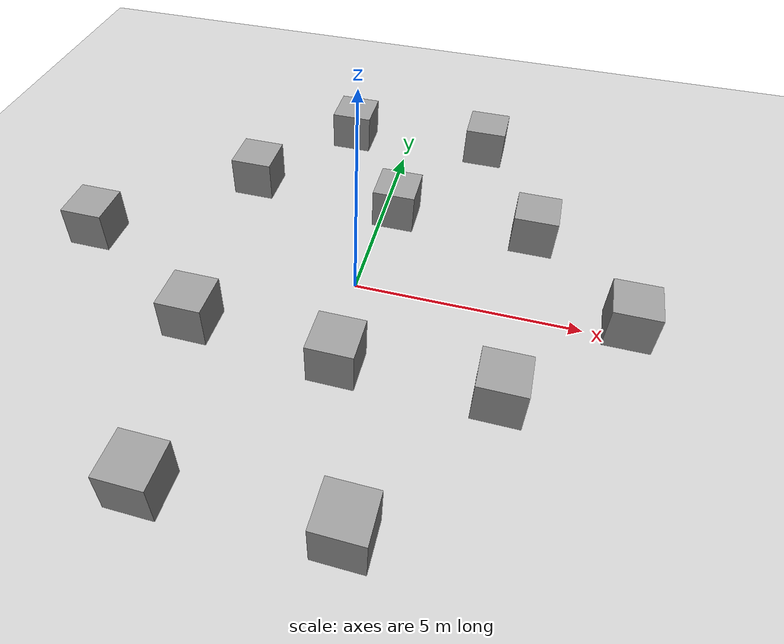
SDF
<sdf version="1.7">
 <world name="default">
  <light name="sun" type="directional">
   <pose>0 0 10 0 -0 0</pose>
   <diffuse>0.8 0.8 0.8 1</diffuse>
   <specular>0.2 0.2 0.2 1</specular>
   <attenuation>
    <range>1000</range>
    <constant>0.9</constant>
    <linear>0.01</linear>
    <quadratic>0.001</quadratic>
   </attenuation>
   <direction>-0.5 0.1 -0.9</direction>
   <spot><inner_angle>0</inner_angle><outer_angle>0</outer_angle><falloff>0</falloff></spot>
  </light>
  <model name="ground_plane">
   <static>1</static>
   <link name="link">
    <collision name="collision">
     <geometry><plane><normal>0 0 1</normal><size>100 100</size></plane></geometry>
     <surface>
      <contact><collide_bitmask>65535</collide_bitmask></contact>
      <friction><ode><mu>100</mu><mu2>50</mu2></ode></friction>
     </surface>
    </collision>
    <visual name="visual">
     <cast_shadows>0</cast_shadows>
     <geometry><plane><normal>0 0 1</normal><size>100 100</size></plane></geometry>
     <material>
      <script><uri>file://media/materials/scripts/gazebo.material</uri><name>Gazebo/Grey</name></script>
     </material>
    </visual>
   </link>
  </model>
  <gravity>0 0 -9.8</gravity>
  <magnetic_field>6e-06 2.3e-05 -4.2e-05</magnetic_field>
  <atmosphere type="adiabatic"/>
  <physics type="ode">
   <max_step_size>0.001</max_step_size>
   <real_time_factor>1</real_time_factor>
   <real_time_update_rate>1000</real_time_update_rate>
  </physics>
  <scene><ambient>0.4 0.4 0.4 1</ambient><background>0.7 0.7 0.7 1</background><shadows>1</shadows></scene>
  <audio><device>default</device></audio>
  <spherical_coordinates>
   <surface_model>EARTH_WGS84</surface_model>
   <latitude_deg>0</latitude_deg>
   <longitude_deg>0</longitude_deg>
   <elevation>0</elevation>
   <heading_deg>0</heading_deg>
  </spherical_coordinates>
  <model name="unit_box">
   <pose>0.233774 -2.31925 0.499995 0 -1e-05 0</pose>
   <link name="link">
    <inertial>
     <mass>1</mass>
     <inertia>
      <ixx>0.166667</ixx>
      <ixy>0</ixy>
      <ixz>0</ixz>
      <iyy>0.166667</iyy>
      <iyz>0</iyz>
      <izz>0.166667</izz>
     </inertia>
    </inertial>
    <collision name="collision"><geometry><box><size>1 1 1</size></box></geometry></collision>
    <visual name="visual">
     <geometry><box><size>1 1 1</size></box></geometry>
     <material>
      <script><name>Gazebo/Grey</name><uri>file://media/materials/scripts/gazebo.material</uri></script>
     </material>
    </visual>
   </link>
  </model>
  <model name="unit_box_0">
   <pose>0.334971 2.65809 0.499995 1e-05 -0 0</pose>
   <link name="link">
    <inertial>
     <mass>1</mass>
     <inertia>
      <ixx>0.166667</ixx>
      <ixy>0</ixy>
      <ixz>0</ixz>
      <iyy>0.166667</iyy>
      <iyz>0</iyz>
      <izz>0.166667</izz>
     </inertia>
    </inertial>
    <collision name="collision"><geometry><box><size>1 1 1</size></box></geometry></collision>
    <visual name="visual">
     <geometry><box><size>1 1 1</size></box></geometry>
     <material>
      <script><name>Gazebo/Grey</name><uri>file://media/materials/scripts/gazebo.material</uri></script>
     </material>
    </visual>
   </link>
  </model>
  <model name="unit_box_1">
   <pose>3.52312 -2.33562 0.499995 0 -1e-05 0</pose>
   <link name="link">
    <inertial>
     <mass>1</mass>
     <inertia>
      <ixx>0.166667</ixx>
      <ixy>0</ixy>
      <ixz>0</ixz>
      <iyy>0.166667</iyy>
      <iyz>0</iyz>
      <izz>0.166667</izz>
     </inertia>
    </inertial>
    <collision name="collision"><geometry><box><size>1 1 1</size></box></geometry></collision>
    <visual name="visual">
     <geometry><box><size>1 1 1</size></box></geometry>
     <material>
      <script><name>Gazebo/Grey</name><uri>file://media/materials/scripts/gazebo.material</uri></script>
     </material>
    </visual>
   </link>
  </model>
  <model name="unit_box_2">
   <pose>3.67803 2.61997 0.499995 1e-05 -0 0</pose>
   <link name="link">
    <inertial>
     <mass>1</mass>
     <inertia>
      <ixx>0.166667</ixx>
      <ixy>0</ixy>
      <ixz>0</ixz>
      <iyy>0.166667</iyy>
      <iyz>0</iyz>
      <izz>0.166667</izz>
     </inertia>
    </inertial>
    <collision name="collision"><geometry><box><size>1 1 1</size></box></geometry></collision>
    <visual name="visual">
     <geometry><box><size>1 1 1</size></box></geometry>
     <material>
      <script><name>Gazebo/Grey</name><uri>file://media/materials/scripts/gazebo.material</uri></script>
     </material>
    </visual>
   </link>
  </model>
  <model name="unit_box_3">
   <pose>-3.05031 -2.03165 0.499995 0 -1e-05 0</pose>
   <link name="link">
    <inertial>
     <mass>1</mass>
     <inertia>
      <ixx>0.166667</ixx>
      <ixy>0</ixy>
      <ixz>0</ixz>
      <iyy>0.166667</iyy>
      <iyz>0</iyz>
      <izz>0.166667</izz>
     </inertia>
    </inertial>
    <collision name="collision"><geometry><box><size>1 1 1</size></box></geometry></collision>
    <visual name="visual">
     <geometry><box><size>1 1 1</size></box></geometry>
     <material>
      <script><name>Gazebo/Grey</name><uri>file://media/materials/scripts/gazebo.material</uri></script>
     </material>
    </visual>
   </link>
  </model>
  <model name="unit_box_4">
   <pose>-3.38334 2.94632 0.499995 1e-05 -0 0</pose>
   <link name="link">
    <inertial>
     <mass>1</mass>
     <inertia>
      <ixx>0.166667</ixx>
      <ixy>0</ixy>
      <ixz>0</ixz>
      <iyy>0.166667</iyy>
      <iyz>0</iyz>
      <izz>0.166667</izz>
     </inertia>
    </inertial>
    <collision name="collision"><geometry><box><size>1 1 1</size></box></geometry></collision>
    <visual name="visual">
     <geometry><box><size>1 1 1</size></box></geometry>
     <material>
      <script><name>Gazebo/Grey</name><uri>file://media/materials/scripts/gazebo.material</uri></script>
     </material>
    </visual>
   </link>
  </model>
  <model name="unit_box_5">
   <pose>1.41519 -5.80644 0.499995 0 -1e-05 0</pose>
   <link name="link">
    <inertial>
     <mass>1</mass>
     <inertia>
      <ixx>0.166667</ixx>
      <ixy>0</ixy>
      <ixz>0</ixz>
      <iyy>0.166667</iyy>
      <iyz>0</iyz>
      <izz>0.166667</izz>
     </inertia>
    </inertial>
    <collision name="collision"><geometry><box><size>1 1 1</size></box></geometry></collision>
    <visual name="visual">
     <geometry><box><size>1 1 1</size></box></geometry>
     <material>
      <script><name>Gazebo/Grey</name><uri>file://media/materials/scripts/gazebo.material</uri></script>
     </material>
    </visual>
   </link>
  </model>
  <model name="unit_box_6">
   <pose>-2.30849 -5.89607 0.499995 1e-05 -0 0</pose>
   <link name="link">
    <inertial>
     <mass>1</mass>
     <inertia>
      <ixx>0.166667</ixx>
      <ixy>0</ixy>
      <ixz>0</ixz>
      <iyy>0.166667</iyy>
      <iyz>0</iyz>
      <izz>0.166667</izz>
     </inertia>
    </inertial>
    <collision name="collision"><geometry><box><size>1 1 1</size></box></geometry></collision>
    <visual name="visual">
     <geometry><box><size>1 1 1</size></box></geometry>
     <material>
      <script><name>Gazebo/Grey</name><uri>file://media/materials/scripts/gazebo.material</uri></script>
     </material>
    </visual>
   </link>
  </model>
  <model name="unit_box_7">
   <pose>-6.45219 0.055409 0.499995 0 -1e-05 0</pose>
   <link name="link">
    <inertial>
     <mass>1</mass>
     <inertia>
      <ixx>0.166667</ixx>
      <ixy>0</ixy>
      <ixz>0</ixz>
      <iyy>0.166667</iyy>
      <iyz>0</iyz>
      <izz>0.166667</izz>
     </inertia>
    </inertial>
    <collision name="collision"><geometry><box><size>1 1 1</size></box></geometry></collision>
    <visual name="visual">
     <geometry><box><size>1 1 1</size></box></geometry>
     <material>
      <script><name>Gazebo/Grey</name><uri>file://media/materials/scripts/gazebo.material</uri></script>
     </material>
    </visual>
   </link>
  </model>
  <model name="unit_box_8">
   <pose>-1.5214 5.64726 0.499995 1e-05 -0 0</pose>
   <link name="link">
    <inertial>
     <mass>1</mass>
     <inertia>
      <ixx>0.166667</ixx>
      <ixy>0</ixy>
      <ixz>0</ixz>
      <iyy>0.166667</iyy>
      <iyz>0</iyz>
      <izz>0.166667</izz>
     </inertia>
    </inertial>
    <collision name="collision"><geometry><box><size>1 1 1</size></box></geometry></collision>
    <visual name="visual">
     <geometry><box><size>1 1 1</size></box></geometry>
     <material>
      <script><name>Gazebo/Grey</name><uri>file://media/materials/scripts/gazebo.material</uri></script>
     </material>
    </visual>
   </link>
  </model>
  <model name="unit_box_9">
   <pose>2.06539 5.85789 0.499995 0 -1e-05 0</pose>
   <link name="link">
    <inertial>
     <mass>1</mass>
     <inertia>
      <ixx>0.166667</ixx>
      <ixy>0</ixy>
      <ixz>0</ixz>
      <iyy>0.166667</iyy>
      <iyz>0</iyz>
      <izz>0.166667</izz>
     </inertia>
    </inertial>
    <collision name="collision"><geometry><box><size>1 1 1</size></box></geometry></collision>
    <visual name="visual">
     <geometry><box><size>1 1 1</size></box></geometry>
     <material>
      <script><name>Gazebo/Grey</name><uri>file://media/materials/scripts/gazebo.material</uri></script>
     </material>
    </visual>
   </link>
  </model>
  <model name="unit_box_10">
   <pose>5.90032 0.240814 0.499995 1e-05 -0 0</pose>
   <link name="link">
    <inertial>
     <mass>1</mass>
     <inertia>
      <ixx>0.166667</ixx>
      <ixy>0</ixy>
      <ixz>0</ixz>
      <iyy>0.166667</iyy>
      <iyz>0</iyz>
      <izz>0.166667</izz>
     </inertia>
    </inertial>
    <collision name="collision"><geometry><box><size>1 1 1</size></box></geometry></collision>
    <visual name="visual">
     <geometry><box><size>1 1 1</size></box></geometry>
     <material>
      <script><name>Gazebo/Grey</name><uri>file://media/materials/scripts/gazebo.material</uri></script>
     </material>
    </visual>
   </link>
  </model>
 </world>
</sdf>
